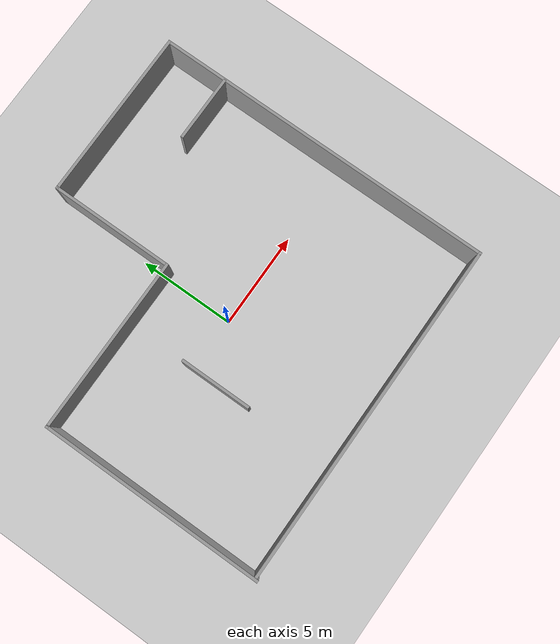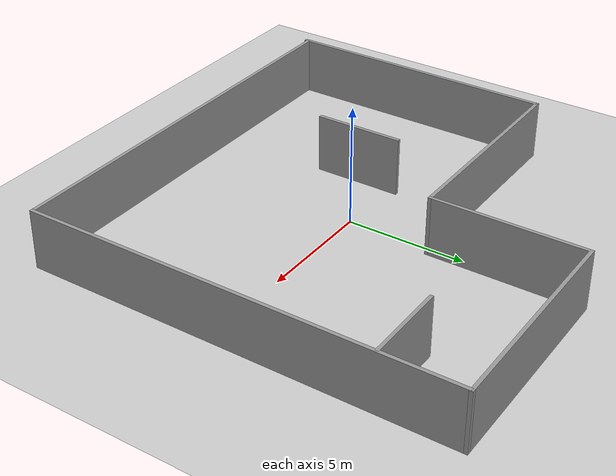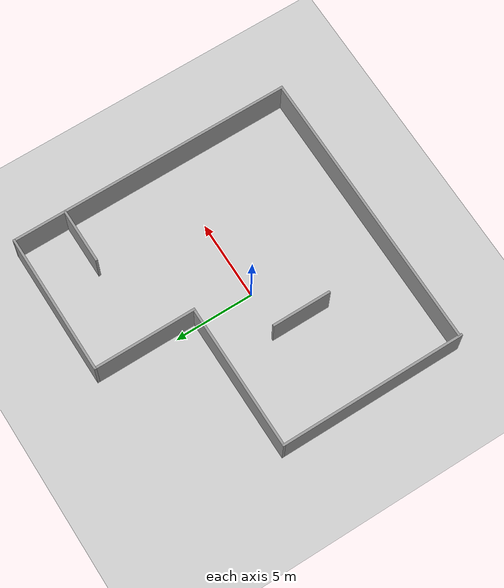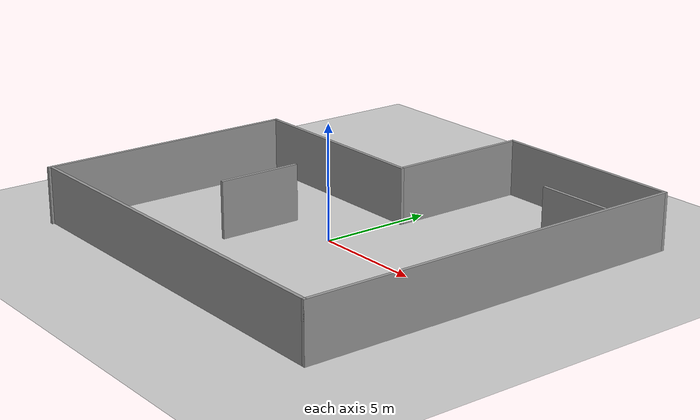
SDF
<sdf version="1.7">
 <world name="default">
  <light name="sun" type="directional">
   <pose>0 0 10 0 -0 0</pose>
   <diffuse>0.8 0.8 0.8 1</diffuse>
   <specular>0.2 0.2 0.2 1</specular>
   <attenuation>
    <range>1000</range>
    <constant>0.9</constant>
    <linear>0.01</linear>
    <quadratic>0.001</quadratic>
   </attenuation>
   <direction>-0.5 0.1 -0.9</direction>
   <spot><inner_angle>0</inner_angle><outer_angle>0</outer_angle><falloff>0</falloff></spot>
  </light>
  <model name="ground_plane">
   <static>1</static>
   <link name="link">
    <collision name="collision">
     <geometry><plane><normal>0 0 1</normal><size>100 100</size></plane></geometry>
     <surface>
      <contact><collide_bitmask>65535</collide_bitmask></contact>
      <friction><ode><mu>100</mu><mu2>50</mu2></ode></friction>
     </surface>
    </collision>
    <visual name="visual">
     <cast_shadows>0</cast_shadows>
     <geometry><plane><normal>0 0 1</normal><size>100 100</size></plane></geometry>
     <material>
      <script><uri>file://media/materials/scripts/gazebo.material</uri><name>Gazebo/Grey</name></script>
     </material>
    </visual>
   </link>
  </model>
  <gravity>0 0 -9.8</gravity>
  <magnetic_field>6e-06 2.3e-05 -4.2e-05</magnetic_field>
  <atmosphere type="adiabatic"/>
  <physics type="ode">
   <max_step_size>0.001</max_step_size>
   <real_time_factor>1</real_time_factor>
   <real_time_update_rate>1000</real_time_update_rate>
  </physics>
  <scene><ambient>0.4 0.4 0.4 1</ambient><background>0.7 0.7 0.7 1</background><shadows>1</shadows></scene>
  <audio><device>default</device></audio>
  <spherical_coordinates>
   <surface_model>EARTH_WGS84</surface_model>
   <latitude_deg>0</latitude_deg>
   <longitude_deg>0</longitude_deg>
   <elevation>0</elevation>
   <heading_deg>0</heading_deg>
  </spherical_coordinates>
  <model name="model1">
   <pose>0.155489 0.9887 0 0 -0 0</pose>
   <link name="Wall_10">
    <collision name="Wall_10_Collision">
     <geometry><box><size>18 0.15 2.5</size></box></geometry>
     <pose>0 0 1.25 0 -0 0</pose>
    </collision>
    <visual name="Wall_10_Visual">
     <pose>0 0 1.25 0 -0 0</pose>
     <geometry><box><size>18 0.15 2.5</size></box></geometry>
     <material>
      <script><uri>file://media/materials/scripts/gazebo.material</uri><name>Gazebo/Grey</name></script>
      <ambient>1 1 1 1</ambient>
     </material>
     <meta><layer>0</layer></meta>
    </visual>
    <pose>0.05 -8.875 0 0 -0 0</pose>
   </link>
   <link name="Wall_11">
    <collision name="Wall_11_Collision">
     <geometry><box><size>18 0.15 2.5</size></box></geometry>
     <pose>0 0 1.25 0 -0 0</pose>
    </collision>
    <visual name="Wall_11_Visual">
     <pose>0 0 1.25 0 -0 0</pose>
     <geometry><box><size>18 0.15 2.5</size></box></geometry>
     <material>
      <script><uri>file://media/materials/scripts/gazebo.material</uri><name>Gazebo/Grey</name></script>
      <ambient>1 1 1 1</ambient>
     </material>
     <meta><layer>0</layer></meta>
    </visual>
    <pose>8.975 0.05 0 0 -0 1.5708</pose>
   </link>
   <link name="Wall_12">
    <collision name="Wall_12_Collision">
     <geometry><box><size>9 0.15 2.5</size></box></geometry>
     <pose>0 0 1.25 0 -0 0</pose>
    </collision>
    <visual name="Wall_12_Visual">
     <pose>0 0 1.25 0 -0 0</pose>
     <geometry><box><size>9 0.15 2.5</size></box></geometry>
     <material>
      <script><uri>file://media/materials/scripts/gazebo.material</uri><name>Gazebo/Grey</name></script>
      <ambient>1 1 1 1</ambient>
     </material>
     <meta><layer>0</layer></meta>
    </visual>
    <pose>4.55 8.975 0 0 -0 3.14159</pose>
   </link>
   <link name="Wall_13">
    <collision name="Wall_13_Collision">
     <geometry><box><size>6.5 0.15 2.5</size></box></geometry>
     <pose>0 0 1.25 0 -0 0</pose>
    </collision>
    <visual name="Wall_13_Visual">
     <pose>0 0 1.25 0 -0 0</pose>
     <geometry><box><size>6.5 0.15 2.5</size></box></geometry>
     <material>
      <script><uri>file://media/materials/scripts/gazebo.material</uri><name>Gazebo/Grey</name></script>
      <ambient>1 1 1 1</ambient>
     </material>
     <meta><layer>0</layer></meta>
    </visual>
    <pose>0.125 5.8 0 0 -0 -1.5708</pose>
   </link>
   <link name="Wall_14">
    <collision name="Wall_14_Collision">
     <geometry><box><size>9.25 0.15 2.5</size></box></geometry>
     <pose>0 0 1.25 0 -0 0</pose>
    </collision>
    <visual name="Wall_14_Visual">
     <pose>0 0 1.25 0 -0 0</pose>
     <geometry><box><size>9.25 0.15 2.5</size></box></geometry>
     <material>
      <script><uri>file://media/materials/scripts/gazebo.material</uri><name>Gazebo/Grey</name></script>
      <ambient>1 1 1 1</ambient>
     </material>
     <meta><layer>0</layer></meta>
    </visual>
    <pose>-4.425 2.625 0 0 -0 3.14159</pose>
   </link>
   <link name="Wall_15">
    <collision name="Wall_15_Collision">
     <geometry><box><size>11.75 0.15 2.5</size></box></geometry>
     <pose>0 0 1.25 0 -0 0</pose>
    </collision>
    <visual name="Wall_15_Visual">
     <pose>0 0 1.25 0 -0 0</pose>
     <geometry><box><size>11.75 0.15 2.5</size></box></geometry>
     <material>
      <script><uri>file://media/materials/scripts/gazebo.material</uri><name>Gazebo/Grey</name></script>
      <ambient>1 1 1 1</ambient>
     </material>
     <meta><layer>0</layer></meta>
    </visual>
    <pose>-8.975 -3.175 0 0 -0 -1.5708</pose>
   </link>
   <link name="Wall_17">
    <collision name="Wall_17_Collision">
     <geometry><box><size>3.75 0.15 2.5</size></box></geometry>
     <pose>0 0 1.25 0 -0 0</pose>
    </collision>
    <visual name="Wall_17_Visual">
     <pose>0 0 1.25 0 -0 0</pose>
     <geometry><box><size>3.75 0.15 2.5</size></box></geometry>
     <material>
      <script><uri>file://media/materials/scripts/gazebo.material</uri><name>Gazebo/Grey</name></script>
      <ambient>1 1 1 1</ambient>
     </material>
     <meta><layer>0</layer></meta>
    </visual>
    <pose>-3.01322 -2.423 0 0 -0 -1.5708</pose>
   </link>
   <link name="Wall_20">
    <collision name="Wall_20_Collision">
     <geometry><box><size>3.5 0.15 2.5</size></box></geometry>
     <pose>0 0 1.25 0 -0 0</pose>
    </collision>
    <visual name="Wall_20_Visual">
     <pose>0 0 1.25 0 -0 0</pose>
     <geometry><box><size>3.5 0.15 2.5</size></box></geometry>
     <material>
      <script><uri>file://media/materials/scripts/gazebo.material</uri><name>Gazebo/Grey</name></script>
      <ambient>1 1 1 1</ambient>
     </material>
     <meta><layer>0</layer></meta>
    </visual>
    <pose>7.23258 5.68322 0 0 -0 3.14159</pose>
   </link>
   <static>1</static>
  </model>
  <plugin name="gazebo_ros_state" filename="libgazebo_ros_state.so"/>
 </world>
</sdf>
